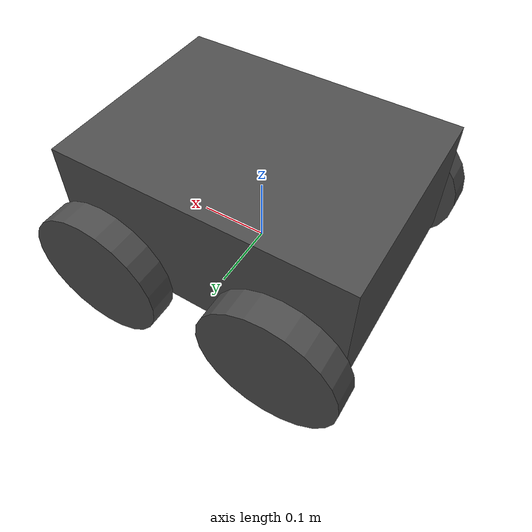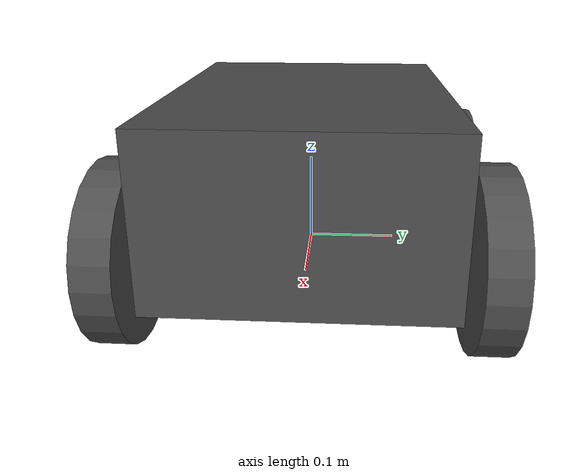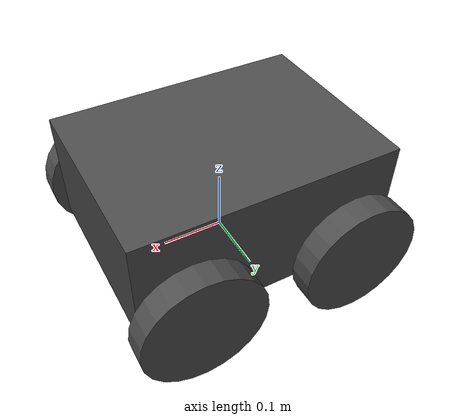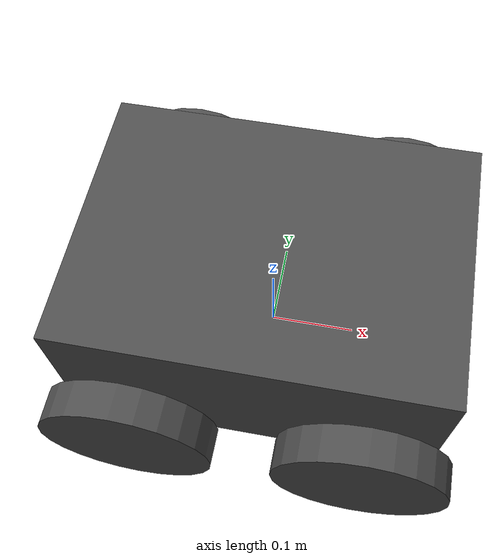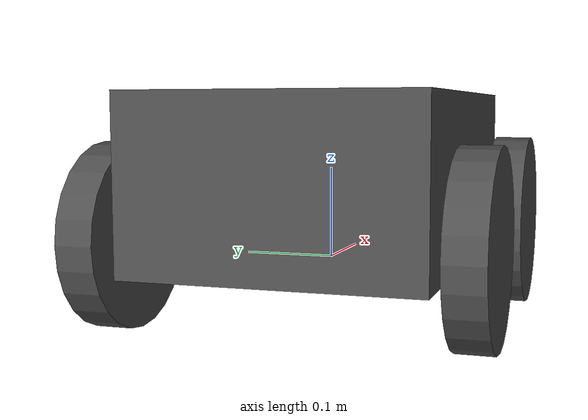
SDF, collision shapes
<sdf version='1.7'>
  <model name='jackal'>
    <link name='base_link'>
      <inertial>
        <pose>0.011999 0.002 0.066996 0 -0 0</pose>
        <mass>16.524</mass>
        <inertia>
          <ixx>0.313604</ixx>
          <ixy>-0.000800024</ixy>
          <ixz>0.0163992</ixz>
          <iyy>0.392205</iyy>
          <iyz>-0.000900134</iyz>
          <izz>0.4485</izz>
        </inertia>
      </inertial>
      <collision name='base_link_fixed_joint_lump__chassis_link_collision'>
        <pose>0 0 0.092 0 -0 0</pose>
        <geometry>
          <box>
            <size>0.42 0.31 0.184</size>
          </box>
        </geometry>
        <surface>
          <contact>
            <ode/>
          </contact>
          <friction>
            <ode/>
          </friction>
        </surface>
      </collision>
      <visual name='base_link_fixed_joint_lump__chassis_link_visual'>
        <pose>0 0 -0.0655 1.5708 -0 1.5708</pose>
        <geometry>
          <mesh>
            <scale>1 1 1</scale>
            <uri>model://jackal_description/meshes/jackal-base.stl</uri>
          </mesh>
        </geometry>
        <material>
          <script>
            <name>Gazebo/DarkGrey</name>
            <uri>file://media/materials/scripts/gazebo.material</uri>
          </script>
        </material>
      </visual>
      <visual name='base_link_fixed_joint_lump__front_fender_link_visual_1'>
        <pose>0 0 0 0 -0 0</pose>
        <geometry>
          <mesh>
            <scale>1 1 1</scale>
            <uri>model://jackal_description/meshes/jackal-fender.stl</uri>
          </mesh>
        </geometry>
        <material>
          <script>
            <name>Gazebo/Yellow</name>
            <uri>file://media/materials/scripts/gazebo.material</uri>
          </script>
        </material>
      </visual>
      <visual name='base_link_fixed_joint_lump__navsat_link_visual_2'>
        <pose>-0.18 0.126 0.1895 0 -0 0</pose>
        <geometry>
          <cylinder>
            <length>0.016</length>
            <radius>0.026</radius>
          </cylinder>
        </geometry>
        <material>
          <script>
            <name>Gazebo/DarkGrey</name>
            <uri>file://media/materials/scripts/gazebo.material</uri>
          </script>
        </material>
      </visual>
      <visual name='base_link_fixed_joint_lump__rear_fender_link_visual_3'>
        <pose>0 0 0 0 -0 3.14159</pose>
        <geometry>
          <mesh>
            <scale>1 1 1</scale>
            <uri>model://jackal_description/meshes/jackal-fender.stl</uri>
          </mesh>
        </geometry>
        <material>
          <script>
            <name>Gazebo/Yellow</name>
            <uri>file://media/materials/scripts/gazebo.material</uri>
          </script>
        </material>
      </visual>
      <gravity>1</gravity>
    </link>
    <joint name='front_left_wheel' type='revolute'>
      <pose relative_to='base_link'>0.131 0.187795 0.0345 0 -0 0</pose>
      <parent>base_link</parent>
      <child>front_left_wheel_link</child>
      <axis>
        <xyz>0 1 0</xyz>
        <limit>
          <lower>-1e+16</lower>
          <upper>1e+16</upper>
        </limit>
        <dynamics>
          <spring_reference>0</spring_reference>
          <spring_stiffness>0</spring_stiffness>
        </dynamics>
      </axis>
    </joint>
    <link name='front_left_wheel_link'>
      <pose relative_to='front_left_wheel'>0 0 0 0 -0 0</pose>
      <inertial>
        <pose>0 0 0 0 -0 0</pose>
        <mass>0.477</mass>
        <inertia>
          <ixx>0.0013</ixx>
          <ixy>0</ixy>
          <ixz>0</ixz>
          <iyy>0.0024</iyy>
          <iyz>0</iyz>
          <izz>0.0013</izz>
        </inertia>
      </inertial>
      <collision name='front_left_wheel_link_collision'>
        <pose>0 0 0 1.5708 -0 0</pose>
        <geometry>
          <cylinder>
            <length>0.04</length>
            <radius>0.098</radius>
          </cylinder>
        </geometry>
        <surface>
          <contact>
            <ode>
              <kp>1e+07</kp>
              <kd>1</kd>
            </ode>
          </contact>
          <friction>
            <ode>
              <mu>0.5</mu>
              <mu2>0.5</mu2>
              <fdir1>1 0 0</fdir1>
            </ode>
          </friction>
        </surface>
      </collision>
      <visual name='front_left_wheel_link_visual'>
        <pose>0 0 0 1.5708 -0 0</pose>
        <geometry>
          <mesh>
            <scale>1 1 1</scale>
            <uri>model://jackal_description/meshes/jackal-wheel.stl</uri>
          </mesh>
        </geometry>
        <material>
          <script>
            <name>Gazebo/DarkGrey</name>
            <uri>file://media/materials/scripts/gazebo.material</uri>
          </script>
        </material>
      </visual>
      <self_collide>0</self_collide>
    </link>
    <joint name='front_right_wheel' type='revolute'>
      <pose relative_to='base_link'>0.131 -0.187795 0.0345 0 -0 0</pose>
      <parent>base_link</parent>
      <child>front_right_wheel_link</child>
      <axis>
        <xyz>0 1 0</xyz>
        <limit>
          <lower>-1e+16</lower>
          <upper>1e+16</upper>
        </limit>
        <dynamics>
          <spring_reference>0</spring_reference>
          <spring_stiffness>0</spring_stiffness>
        </dynamics>
      </axis>
    </joint>
    <link name='front_right_wheel_link'>
      <pose relative_to='front_right_wheel'>0 0 0 0 -0 0</pose>
      <inertial>
        <pose>0 0 0 0 -0 0</pose>
        <mass>0.477</mass>
        <inertia>
          <ixx>0.0013</ixx>
          <ixy>0</ixy>
          <ixz>0</ixz>
          <iyy>0.0024</iyy>
          <iyz>0</iyz>
          <izz>0.0013</izz>
        </inertia>
      </inertial>
      <collision name='front_right_wheel_link_collision'>
        <pose>0 0 0 1.5708 -0 0</pose>
        <geometry>
          <cylinder>
            <length>0.04</length>
            <radius>0.098</radius>
          </cylinder>
        </geometry>
        <surface>
          <contact>
            <ode>
              <kp>1e+07</kp>
              <kd>1</kd>
            </ode>
          </contact>
          <friction>
            <ode>
              <mu>0.5</mu>
              <mu2>0.5</mu2>
              <fdir1>1 0 0</fdir1>
            </ode>
          </friction>
        </surface>
      </collision>
      <visual name='front_right_wheel_link_visual'>
        <pose>0 0 0 1.5708 -0 0</pose>
        <geometry>
          <mesh>
            <scale>1 1 1</scale>
            <uri>model://jackal_description/meshes/jackal-wheel.stl</uri>
          </mesh>
        </geometry>
        <material>
          <script>
            <name>Gazebo/DarkGrey</name>
            <uri>file://media/materials/scripts/gazebo.material</uri>
          </script>
        </material>
      </visual>
      <self_collide>0</self_collide>
    </link>
    <joint name='rear_left_wheel' type='revolute'>
      <pose relative_to='base_link'>-0.131 0.187795 0.0345 0 -0 0</pose>
      <parent>base_link</parent>
      <child>rear_left_wheel_link</child>
      <axis>
        <xyz>0 1 0</xyz>
        <limit>
          <lower>-1e+16</lower>
          <upper>1e+16</upper>
        </limit>
        <dynamics>
          <spring_reference>0</spring_reference>
          <spring_stiffness>0</spring_stiffness>
        </dynamics>
      </axis>
    </joint>
    <link name='rear_left_wheel_link'>
      <pose relative_to='rear_left_wheel'>0 0 0 0 -0 0</pose>
      <inertial>
        <pose>0 0 0 0 -0 0</pose>
        <mass>0.477</mass>
        <inertia>
          <ixx>0.0013</ixx>
          <ixy>0</ixy>
          <ixz>0</ixz>
          <iyy>0.0024</iyy>
          <iyz>0</iyz>
          <izz>0.0013</izz>
        </inertia>
      </inertial>
      <collision name='rear_left_wheel_link_collision'>
        <pose>0 0 0 1.5708 -0 0</pose>
        <geometry>
          <cylinder>
            <length>0.04</length>
            <radius>0.098</radius>
          </cylinder>
        </geometry>
        <surface>
          <contact>
            <ode>
              <kp>1e+07</kp>
              <kd>1</kd>
            </ode>
          </contact>
          <friction>
            <ode>
              <mu>0.5</mu>
              <mu2>0.5</mu2>
              <fdir1>1 0 0</fdir1>
            </ode>
          </friction>
        </surface>
      </collision>
      <visual name='rear_left_wheel_link_visual'>
        <pose>0 0 0 1.5708 -0 0</pose>
        <geometry>
          <mesh>
            <scale>1 1 1</scale>
            <uri>model://jackal_description/meshes/jackal-wheel.stl</uri>
          </mesh>
        </geometry>
        <material>
          <script>
            <name>Gazebo/DarkGrey</name>
            <uri>file://media/materials/scripts/gazebo.material</uri>
          </script>
        </material>
      </visual>
      <self_collide>0</self_collide>
    </link>
    <joint name='rear_right_wheel' type='revolute'>
      <pose relative_to='base_link'>-0.131 -0.187795 0.0345 0 -0 0</pose>
      <parent>base_link</parent>
      <child>rear_right_wheel_link</child>
      <axis>
        <xyz>0 1 0</xyz>
        <limit>
          <lower>-1e+16</lower>
          <upper>1e+16</upper>
        </limit>
        <dynamics>
          <spring_reference>0</spring_reference>
          <spring_stiffness>0</spring_stiffness>
        </dynamics>
      </axis>
    </joint>
    <link name='rear_right_wheel_link'>
      <pose relative_to='rear_right_wheel'>0 0 0 0 -0 0</pose>
      <inertial>
        <pose>0 0 0 0 -0 0</pose>
        <mass>0.477</mass>
        <inertia>
          <ixx>0.0013</ixx>
          <ixy>0</ixy>
          <ixz>0</ixz>
          <iyy>0.0024</iyy>
          <iyz>0</iyz>
          <izz>0.0013</izz>
        </inertia>
      </inertial>
      <collision name='rear_right_wheel_link_collision'>
        <pose>0 0 0 1.5708 -0 0</pose>
        <geometry>
          <cylinder>
            <length>0.04</length>
            <radius>0.098</radius>
          </cylinder>
        </geometry>
        <surface>
          <contact>
            <ode>
              <kp>1e+07</kp>
              <kd>1</kd>
            </ode>
          </contact>
          <friction>
            <ode>
              <mu>0.5</mu>
              <mu2>0.5</mu2>
              <fdir1>1 0 0</fdir1>
            </ode>
          </friction>
        </surface>
      </collision>
      <visual name='rear_right_wheel_link_visual'>
        <pose>0 0 0 1.5708 -0 0</pose>
        <geometry>
          <mesh>
            <scale>1 1 1</scale>
            <uri>model://jackal_description/meshes/jackal-wheel.stl</uri>
          </mesh>
        </geometry>
        <material>
          <script>
            <name>Gazebo/DarkGrey</name>
            <uri>file://media/materials/scripts/gazebo.material</uri>
          </script>
        </material>
      </visual>
      <self_collide>0</self_collide>
    </link>
    <plugin name='gazebo_ros_control' filename='libgazebo_ros_control.so'>
      <robotNamespace>/</robotNamespace>
    </plugin>
    <plugin name='imu_controller' filename='libhector_gazebo_ros_imu.so'>
      <robotNamespace>/</robotNamespace>
      <updateRate>50.0</updateRate>
      <topicName>imu/data</topicName>
      <accelDrift>0.005 0.005 0.005</accelDrift>
      <accelGaussianNoise>0.005 0.005 0.005</accelGaussianNoise>
      <rateDrift>0.005 0.005 0.005</rateDrift>
      <rateGaussianNoise>0.005 0.005 0.005</rateGaussianNoise>
      <headingDrift>0.005</headingDrift>
      <headingGaussianNoise>0.005</headingGaussianNoise>
      <bodyName>base_link</bodyName>
      <xyzOffset>0 0 0</xyzOffset>
      <rpyOffset>0 -0 0</rpyOffset>
    </plugin>
    <static>0</static>
    <plugin name='gps_controller' filename='libhector_gazebo_ros_gps.so'>
      <updateRate>40</updateRate>
      <robotNamespace>/</robotNamespace>
      <frameId>base_link</frameId>
      <topicName>/navsat/fix</topicName>
      <velocityTopicName>/navsat/vel</velocityTopicName>
      <referenceLatitude>49.9</referenceLatitude>
      <referenceLongitude>8.9</referenceLongitude>
      <referenceHeading>0</referenceHeading>
      <referenceAltitude>0</referenceAltitude>
      <drift>0.0001 0.0001 0.0001</drift>
      <bodyName>base_link</bodyName>
      <xyzOffset>0.18 -0.126 -0.1815</xyzOffset>
      <rpyOffset>0 -0 0</rpyOffset>
    </plugin>
  </model>
</sdf>
